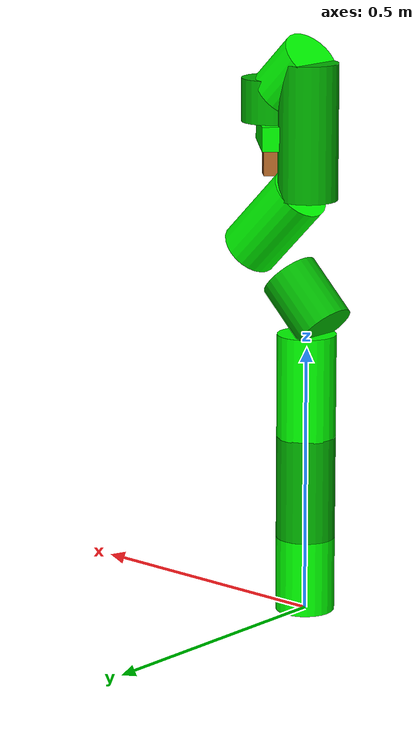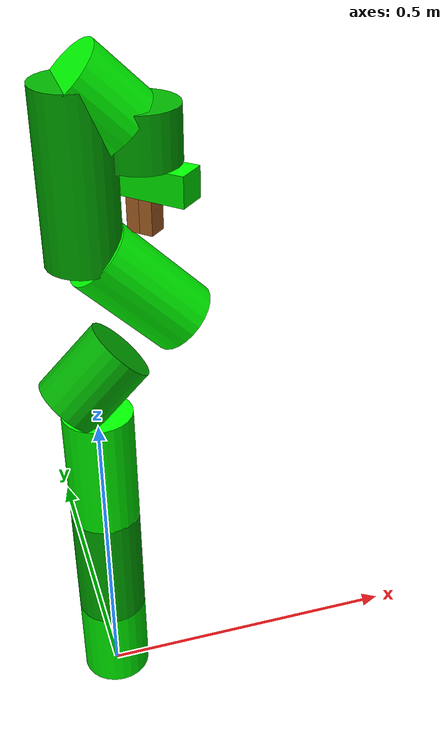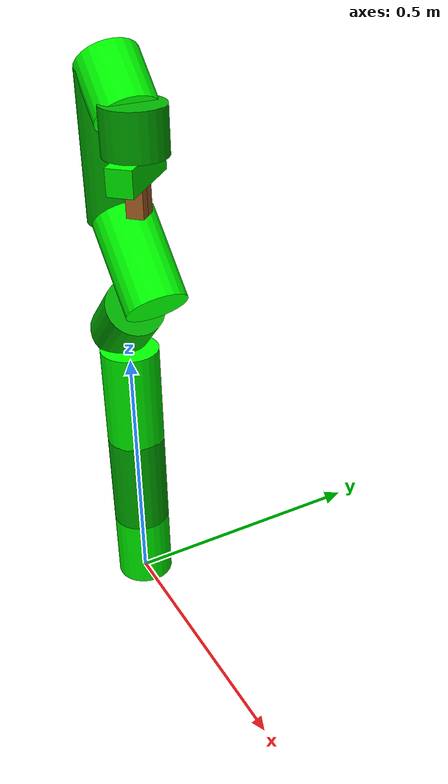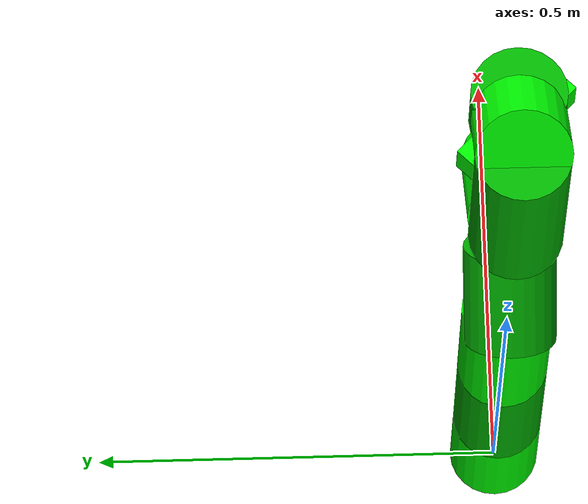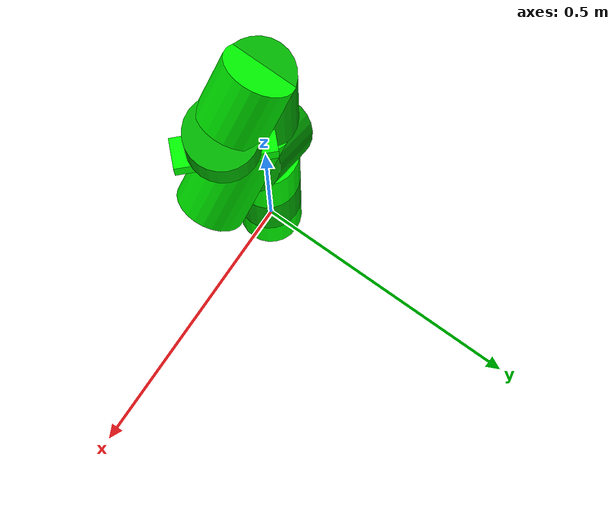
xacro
<?xml version="1.0" ?>
<!-- |    This document was autogenerated by xacro from /opt/ros/kinetic/share/moveit_resources/panda_description/urdf/panda.urdf | -->
<!-- |    EDITING THIS FILE BY HAND IS NOT RECOMMENDED                                 | -->
<robot name="panda" xmlns:xacro="http://www.ros.org/wiki/xacro">
    <link name="panda_link0">
        <visual>
            <origin xyz="0 0 0.0705" rpy="0 0 0"/>
            <geometry>
            <cylinder radius="0.055" length="0.141"/>
            </geometry>
            <material name="green">
            <color rgba="0 1 0 1"/>
            </material>
        </visual>

        <collision>
            <origin xyz="0 0 0.0705" rpy="0 0 0"/>
            <geometry>
            <cylinder radius="0.055" length="0.141"/>
            </geometry>
        </collision>

        <inertial>
            <origin xyz="0 0 0.0705" rpy="0 0 0"/>
            <mass value="0.629769"/>
            <inertia
            ixx="0.001519632597" ixy="0.0" ixz="0.0"
            iyy="0.001519632597" iyz="0.0"
            izz="0.000952525613"/>
        </inertial>
    </link>
    <link name="panda_link1">
        <visual>
            <origin xyz="0 0 -0.0952" rpy="0 0 0"/>
            <geometry>
            <cylinder radius="0.055" length="0.194"/>
            </geometry>
            <material name="dark_green">
            <color rgba="0 0.7 0 1"/>
            </material>
        </visual>
        <collision>
            <geometry>
                <mesh filename="file://$(find moveit_resources_panda_description)/meshes/collision/link1.stl" />
            </geometry>
        </collision>
        <inertial>
          <origin xyz="0 0 -0.0952" rpy="0 0 0" />
          <mass value="4.970684"/>
          <inertia ixx="0.70337" iyy="0.70661" izz="0.009117" ixy="-0.000139" ixz="0.006772" iyz="0.019169"/>
        </inertial>
    </link>
    <joint name="panda_joint1" type="revolute">
        <safety_controller k_position="100.0" k_velocity="40.0" soft_lower_limit="-2.8973" soft_upper_limit="2.8973" />
        <origin rpy="0 0 0" xyz="0 0 0.333" />
        <parent link="panda_link0" />
        <child link="panda_link1" />
        <axis xyz="0 0 1" />
        <limit effort="87" lower="-2.9671" upper="2.9671" velocity="2.3925" />
        <dynamics D="1" K="7000" damping="0.003" friction="0.0" mu_coulomb="0" mu_viscous="16" />
    </joint>
    <link name="panda_link2">
        <visual>
            <origin xyz="0 -0.0975 0" rpy="1.57079632679 0 0"/>
            <geometry>
            <cylinder radius="0.055" length="0.195"/>
            </geometry>
            <material name="green">
            <color rgba="0 1 0 1"/>
            </material>
        </visual>
        <collision>
            <geometry>
                <mesh filename="file://$(find moveit_resources_panda_description)/meshes/collision/link2.stl" />
            </geometry>
        </collision>
        <inertial>
          <origin xyz="0 -0.0975 0" rpy="1.57079632679 0 0" />
          <mass value="0.646926"/>
          <inertia ixx="0.007962" iyy="2.811E-2" izz="2.5995E-2" ixy="-3.925E-3" ixz="1.0254E-2" iyz="7.04E-4"/>
        </inertial>
    </link>
    <joint name="panda_joint2" type="revolute">
        <safety_controller k_position="100.0" k_velocity="40.0" soft_lower_limit="-1.7628" soft_upper_limit="1.7628" />
        <origin rpy="-1.57079632679 0 0" xyz="0 0 0" />
        <parent link="panda_link1" />
        <child link="panda_link2" />
        <axis xyz="0 0 1" />
        <limit effort="87" lower="-1.8326" upper="1.8326" velocity="2.3925" />
        <dynamics D="1" K="7000" damping="0.003" friction="0.0" mu_coulomb="0" mu_viscous="16" />
    </joint>
    <link name="panda_link3">
        <visual>
            <origin xyz="0 0 -0.0605" rpy="0 0.7853981634 0"/>
            <geometry>
            <cylinder radius="0.055" length="0.121"/>
            </geometry>
            <material name="dark_green">
            <color rgba="0 0.7 0 1"/>
            </material>
        </visual>
        <collision>
            <geometry>
                <mesh filename="file://$(find moveit_resources_panda_description)/meshes/collision/link3.stl" />
            </geometry>
        </collision>
        <inertial>
          <origin xyz="2.7518E-2 3.9252E-2 -6.6502E-2" rpy="0 0 0" />
          <mass value="3.228604"/>
          <inertia ixx="3.7242E-2" iyy="3.6155E-2" izz="1.083E-2" ixy="-4.761E-3" ixz="-1.1396E-2" iyz="-1.2805E-2"/>
        </inertial>
    </link>
    <joint name="panda_joint3" type="revolute">
        <safety_controller k_position="100.0" k_velocity="40.0" soft_lower_limit="-2.8973" soft_upper_limit="2.8973" />
        <origin rpy="1.57079632679 0 0" xyz="0 -0.316 0" />
        <parent link="panda_link2" />
        <child link="panda_link3" />
        <axis xyz="0 0 1" />
        <limit effort="87" lower="-2.9671" upper="2.9671" velocity="2.3925" />
        <dynamics D="1" K="7000" damping="0.003" friction="0.0" mu_coulomb="0" mu_viscous="16" />
    </joint>
    <link name="panda_link4">
        <visual>
            <origin xyz="-0.005 0.08 0" rpy="0.7853981634 1.57079632679 0"/>
            <geometry>
            <cylinder radius="0.055" length="0.17"/>
            </geometry>
            <material name="green">
            <color rgba="0 1 0 1"/>
            </material>
        </visual>
        <collision>
            <geometry>
                <mesh filename="file://$(find moveit_resources_panda_description)/meshes/collision/link4.stl" />
            </geometry>
        </collision>
        <inertial>
          <origin xyz="-0.005 0.08 0" rpy="0.7853981634 1.57079632679 0" />
          <mass value="3.587895"/>
          <inertia ixx="2.5853E-2" iyy="1.9552E-2" izz="2.8323E-2" ixy="7.796E-3" ixz="-1.332E-3" iyz="8.641E-3"/>
        </inertial>
    </link>
    <joint name="panda_joint4" type="revolute">
        <safety_controller k_position="100.0" k_velocity="40.0" soft_lower_limit="-3.0718" soft_upper_limit="0.0175" />
        <origin rpy="1.57079632679 0 0" xyz="0.0825 0 0" />
        <parent link="panda_link3" />
        <child link="panda_link4" />
        <axis xyz="0 0 1" />
        <limit effort="87" lower="-3.1416" upper="0.0873" velocity="2.3925" />
        <dynamics D="1" K="7000" damping="0.003" friction="0.0" mu_coulomb="0" mu_viscous="16" />
    </joint>
    <link name="panda_link5">
        <visual>
            <origin xyz="0 0 -0.13" rpy="0 0 0"/>
            <geometry>
            <cylinder radius="0.055" length="0.25"/>
            </geometry>
            <material name="dark_green">
            <color rgba="0 0.7 0 1"/>
            </material>
        </visual>
        <collision>
            <geometry>
                <mesh filename="file://$(find moveit_resources_panda_description)/meshes/collision/link5.stl" />
            </geometry>
        </collision>
        <inertial>
          <origin xyz="-1.1953E-2 4.1065E-2 -3.8437E-2" rpy="0 0 0" />
          <mass value="1.225946"/>
          <inertia ixx="3.5549E-2" iyy="2.9474E-2" izz="8.627E-3" ixy="-2.117E-3" ixz="-4.037E-3" iyz="2.29E-4"/>
        </inertial>
    </link>
    <joint name="panda_joint5" type="revolute">
        <safety_controller k_position="100.0" k_velocity="40.0" soft_lower_limit="-2.8973" soft_upper_limit="2.8973" />
        <origin rpy="-1.57079632679 0 0" xyz="-0.0825 0.384 0" />
        <parent link="panda_link4" />
        <child link="panda_link5" />
        <axis xyz="0 0 1" />
        <limit effort="12" lower="-2.9671" upper="2.9671" velocity="2.8710" />
        <dynamics D="1" K="7000" damping="0.003" friction="0.0" mu_coulomb="0" mu_viscous="16" />
    </joint>
    <link name="panda_link6">
        <visual>
            <origin xyz="0.03 -.03 0" rpy="0.7853981634 1.57079632679 0"/>
            <geometry>
            <cylinder radius="0.055" length="0.1"/>
            </geometry>
            <material name="green">
            <color rgba="0 1 0 1"/>
            </material>
        </visual>
        <collision>
            <geometry>
                <mesh filename="file://$(find moveit_resources_panda_description)/meshes/collision/link6.stl" />
            </geometry>
        </collision>
        <inertial>
          <origin xyz="6.0149E-2 -1.4117E-2 -1.0517E-2" rpy="0 0 0" />
          <mass value="1.666555"/>
          <inertia ixx="1.964E-3" iyy="4.354E-3" izz="5.433E-3" ixy="1.09E-4" ixz="-1.158E-3" iyz="3.41E-4"/>
        </inertial>
    </link>
    <joint name="panda_joint6" type="revolute">
        <safety_controller k_position="100.0" k_velocity="40.0" soft_lower_limit="-0.0175" soft_upper_limit="3.7525" />
        <origin rpy="1.57079632679 0 0" xyz="0 0 0" />
        <parent link="panda_link5" />
        <child link="panda_link6" />
        <axis xyz="0 0 1" />
        <limit effort="12" lower="-0.0873" upper="3.8223" velocity="2.8710" />
        <dynamics D="1" K="7000" damping="0.003" friction="0.0" mu_coulomb="0" mu_viscous="16" />
    </joint>
    <link name="panda_link7">
        <visual>
            <origin xyz="0 0 0.08" rpy="0 0 0"/>
            <geometry>
            <cylinder radius="0.055" length="0.08"/>
            </geometry>
            <material name="dark_green">
            <color rgba="0 0.7 0 1"/>
            </material>
        </visual>
        <collision>
            <geometry>
                <mesh filename="file://$(find moveit_resources_panda_description)/meshes/collision/link7.stl" />
            </geometry>
        </collision>
        <inertial>
          <origin xyz="1.0517E-2 -4.252E-3 6.1597E-2" rpy="0 0 0" />
          <mass value="7.35522E-1"/>
          <inertia ixx="1.2516E-2" iyy="1.0027E-2" izz="4.815E-3" ixy="-4.28E-4" ixz="-1.19E-3" iyz="-7.41E-4"/>
        </inertial>
    </link>
    <joint name="panda_joint7" type="revolute">
        <safety_controller k_position="100.0" k_velocity="40.0" soft_lower_limit="-2.8973" soft_upper_limit="2.8973" />
        <origin rpy="1.57079632679 0 0" xyz="0.088 0 0" />
        <parent link="panda_link6" />
        <child link="panda_link7" />
        <axis xyz="0 0 1" />
        <limit effort="12" lower="-2.9671" upper="2.9671" velocity="2.8710" />
        <dynamics D="1" K="7000" damping="0.003" friction="0.0" mu_coulomb="0" mu_viscous="16" />
    </joint>
    <link name="panda_link8" />
    <joint name="panda_joint8" type="fixed">
        <origin rpy="0 0 0" xyz="0 0 0.107" />
        <parent link="panda_link7" />
        <child link="panda_link8" />
        <axis xyz="0 0 0" />
    </joint>
    <joint name="panda_hand_joint" type="fixed">
        <parent link="panda_link8" />
        <child link="panda_hand" />
        <origin rpy="0 0 -0.785398163397" xyz="0 0 0" />
    </joint>
    <link name="panda_hand">
        <visual>
            <origin xyz="0 0 0.035" rpy="0 0 0"/>
            <geometry>
                <box size="0.045 0.15 0.045"/>
            </geometry>
            <material name="green">
                <color rgba="0 1 0 1"/>
            </material>
        </visual>
        <collision>
            <geometry>
                <mesh filename="file://$(find moveit_resources_panda_description)/meshes/collision/hand.stl" />
            </geometry>
        </collision>
        <inertial>
          <origin xyz="-0.01 0 0.03" rpy="0 0 0" />
          <mass value="0.73"/>
          <inertia ixx="0.001" iyy="0.0025" izz="0.0017" ixy="0" ixz="0" iyz="0"/>
        </inertial>
    </link>
    <link name="panda_leftfinger">
        <visual>
            <origin xyz="0 0.01 0.026" rpy="0 0 0"/>
            <geometry>
                <box size="0.03 0.02 0.054"/>
            </geometry>
            <material name="brown">
                <color rgba="0.71 0.41 0.16 1"/>
            </material>
        </visual>
        <collision>
            <origin xyz="0 0.01 0.026" rpy="0 0 0"/>
            <geometry>
                <box size="0.03 0.02 0.054"/>
            </geometry>
        </collision>
        <inertial>
          <origin xyz="0 0 0" rpy="0 0 0" />
          <mass value="0.015"/>
          <inertia ixx="2.375E-6" iyy="2.375E-6" izz="7.5E-7" ixy="0" ixz="0" iyz="0"/>
        </inertial>
    </link>
    <link name="panda_rightfinger">
        <visual>
            <origin xyz="0 -0.01 0.026" rpy="0 0 0"/>
            <geometry>
                <box size="0.03 0.02 0.054"/>
            </geometry>
            <material name="brown">
                <color rgba="0.71 0.41 0.16 1"/>
            </material>
        </visual>
        <collision>
            <origin xyz="0 -0.01 0.026" rpy="0 0 0"/>
            <geometry>
                <box size="0.03 0.02 0.054"/>
            </geometry>
        </collision>
        <inertial>
          <origin xyz="0 0 0" rpy="0 0 0" />
          <mass value="0.15"/>
          <inertia ixx="2.375E-6" iyy="2.375E-6" izz="7.5E-7" ixy="0" ixz="0" iyz="0"/>
        </inertial>
    </link>
    <joint name="panda_finger_joint1" type="prismatic">
        <parent link="panda_hand" />
        <child link="panda_leftfinger" />
        <origin rpy="0 0 0" xyz="0 0 0.0584" />
        <axis xyz="0 1 0" />
        <limit effort="20" lower="0.0" upper="0.04" velocity="0.2" />
        <dynamics damping="0.3" />
    </joint>
    <joint name="panda_finger_joint2" type="prismatic">
        <parent link="panda_hand" />
        <child link="panda_rightfinger" />
        <origin rpy="0 0 0" xyz="0 0 0.0584" />
        <axis xyz="0 -1 0" />
        <limit effort="20" lower="0.0" upper="0.04" velocity="0.2" />
        <mimic joint="panda_finger_joint1" />
        <dynamics damping="0.3" />
    </joint>
</robot>
